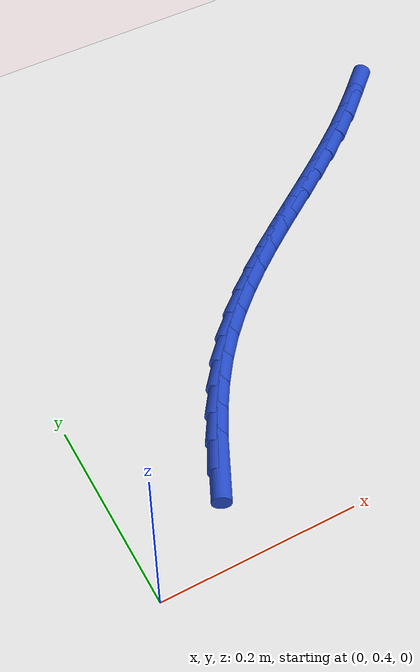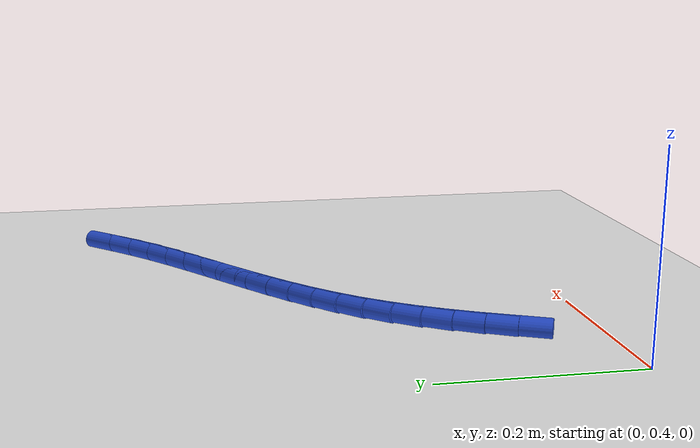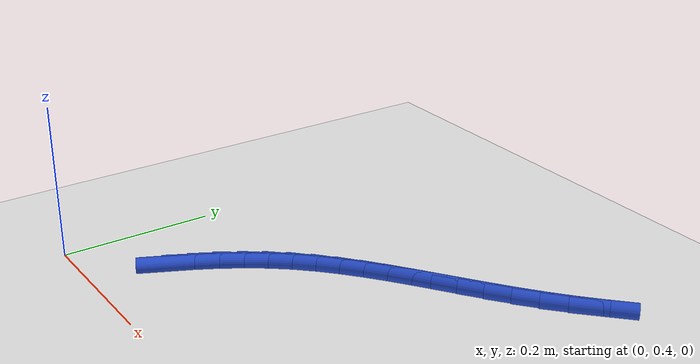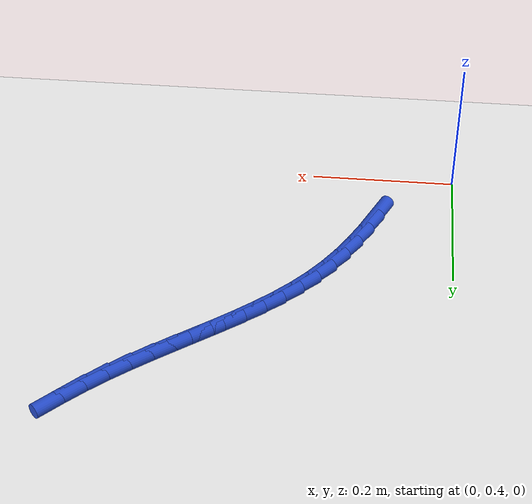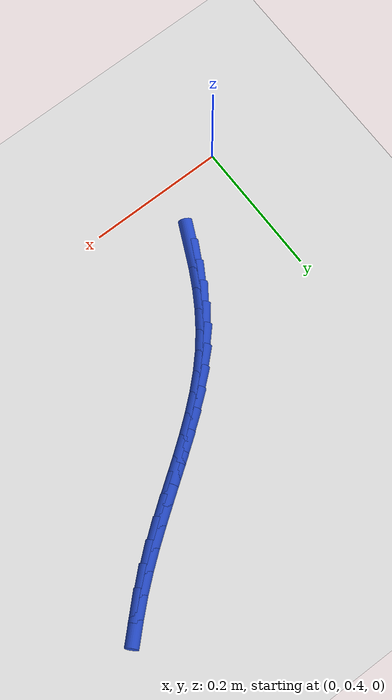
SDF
<sdf version="1.6">
 <world name="default">
  <model name="ground_plane">
   <static>1</static>
   <link name="link">
    <collision name="collision">
     <geometry><plane><normal>0 0 1</normal><size>100 100</size></plane></geometry>
     <surface><friction><ode><mu>100</mu><mu2>50</mu2></ode></friction></surface>
    </collision>
    <visual name="visual">
     <cast_shadows>0</cast_shadows>
     <geometry><plane><normal>0 0 1</normal><size>100 100</size></plane></geometry>
     <material>
      <script><uri>file://media/materials/scripts/gazebo.material</uri><name>Gazebo/WhiteGlow</name></script>
     </material>
    </visual>
   </link>
  </model>
  <model name="line">
   <link name="link_16">
    <pose>0.10963596149787026 0.49259504146608374 0.01 0 1.57 1.1235939953996381</pose>
    <collision name="collision">
     <geometry><cylinder><radius>0.01</radius><length>0.08</length></cylinder></geometry>
    </collision>
    <visual name="visual">
     <material>
      <script><name>Gazebo/Blue</name><uri>file://media/materials/scripts/gazebo.material</uri></script>
     </material>
     <geometry><cylinder><radius>0.01</radius><length>0.08</length></cylinder></geometry>
    </visual>
   </link>
   <link name="link_17">
    <pose>0.12323353961052447 0.5209464101278314 0.01 0 1.57 1.0735516022050022</pose>
    <collision name="collision">
     <geometry><cylinder><radius>0.01</radius><length>0.08</length></cylinder></geometry>
    </collision>
    <visual name="visual">
     <material>
      <script><name>Gazebo/Blue</name><uri>file://media/materials/scripts/gazebo.material</uri></script>
     </material>
     <geometry><cylinder><radius>0.01</radius><length>0.08</length></cylinder></geometry>
    </visual>
   </link>
   <link name="link_18">
    <pose>0.13807692696084287 0.5482958835029461 0.01 0 1.57 1.0170895564254745</pose>
    <collision name="collision">
     <geometry><cylinder><radius>0.01</radius><length>0.08</length></cylinder></geometry>
    </collision>
    <visual name="visual">
     <material>
      <script><name>Gazebo/Blue</name><uri>file://media/materials/scripts/gazebo.material</uri></script>
     </material>
     <geometry><cylinder><radius>0.01</radius><length>0.08</length></cylinder></geometry>
    </visual>
   </link>
   <link name="link_19">
    <pose>0.1542716628500016 0.5744917598729503 0.01 0 1.57 0.9539432039357943</pose>
    <collision name="collision">
     <geometry><cylinder><radius>0.01</radius><length>0.08</length></cylinder></geometry>
    </collision>
    <visual name="visual">
     <material>
      <script><name>Gazebo/Blue</name><uri>file://media/materials/scripts/gazebo.material</uri></script>
     </material>
     <geometry><cylinder><radius>0.01</radius><length>0.08</length></cylinder></geometry>
    </visual>
   </link>
   <link name="link_20">
    <pose>0.1719232865791765 0.5993823375193654 0.01 0 1.57 0.8840601311046977</pose>
    <collision name="collision">
     <geometry><cylinder><radius>0.01</radius><length>0.08</length></cylinder></geometry>
    </collision>
    <visual name="visual">
     <material>
      <script><name>Gazebo/Blue</name><uri>file://media/materials/scripts/gazebo.material</uri></script>
     </material>
     <geometry><cylinder><radius>0.01</radius><length>0.08</length></cylinder></geometry>
    </visual>
   </link>
   <link name="link_21">
    <pose>0.1911365075809445 0.6228169876965481 0.01 0 1.57 0.8129370297855333</pose>
    <collision name="collision">
     <geometry><cylinder><radius>0.01</radius><length>0.08</length></cylinder></geometry>
    </collision>
    <visual name="visual">
     <material>
      <script><name>Gazebo/Blue</name><uri>file://media/materials/scripts/gazebo.material</uri></script>
     </material>
     <geometry><cylinder><radius>0.01</radius><length>0.08</length></cylinder></geometry>
    </visual>
   </link>
   <link name="link_22">
    <pose>0.21191631395889213 0.6447740156576184 0.01 0 1.57 0.7515742842364286</pose>
    <collision name="collision">
     <geometry><cylinder><radius>0.01</radius><length>0.08</length></cylinder></geometry>
    </collision>
    <visual name="visual">
     <material>
      <script><name>Gazebo/Blue</name><uri>file://media/materials/scripts/gazebo.material</uri></script>
     </material>
     <geometry><cylinder><radius>0.01</radius><length>0.08</length></cylinder></geometry>
    </visual>
   </link>
   <link name="link_23">
    <pose>0.2340743916555512 0.6654816553404339 0.01 0 1.57 0.7017033571511775</pose>
    <collision name="collision">
     <geometry><cylinder><radius>0.01</radius><length>0.08</length></cylinder></geometry>
    </collision>
    <visual name="visual">
     <material>
      <script><name>Gazebo/Blue</name><uri>file://media/materials/scripts/gazebo.material</uri></script>
     </material>
     <geometry><cylinder><radius>0.01</radius><length>0.08</length></cylinder></geometry>
    </visual>
   </link>
   <link name="link_24">
    <pose>0.2574002691879749 0.6851967889720207 0.01 0 1.57 0.663414064282118</pose>
    <collision name="collision">
     <geometry><cylinder><radius>0.01</radius><length>0.08</length></cylinder></geometry>
    </collision>
    <visual name="visual">
     <material>
      <script><name>Gazebo/Blue</name><uri>file://media/materials/scripts/gazebo.material</uri></script>
     </material>
     <geometry><cylinder><radius>0.01</radius><length>0.08</length></cylinder></geometry>
    </visual>
   </link>
   <link name="link_25">
    <pose>0.2816834750732168 0.7041762987794064 0.01 0 1.57 0.6365156320590385</pose>
    <collision name="collision">
     <geometry><cylinder><radius>0.01</radius><length>0.08</length></cylinder></geometry>
    </collision>
    <visual name="visual">
     <material>
      <script><name>Gazebo/Blue</name><uri>file://media/materials/scripts/gazebo.material</uri></script>
     </material>
     <geometry><cylinder><radius>0.01</radius><length>0.08</length></cylinder></geometry>
    </visual>
   </link>
   <link name="link_26">
    <pose>0.30671353782832955 0.7226770669896165 0.01 0 1.57 0.6206937872995485</pose>
    <collision name="collision">
     <geometry><cylinder><radius>0.01</radius><length>0.08</length></cylinder></geometry>
    </collision>
    <visual name="visual">
     <material>
      <script><name>Gazebo/Blue</name><uri>file://media/materials/scripts/gazebo.material</uri></script>
     </material>
     <geometry><cylinder><radius>0.01</radius><length>0.08</length></cylinder></geometry>
    </visual>
   </link>
   <link name="link_27">
    <pose>0.33227998597036706 0.7409559758296789 0.01 0 1.57 0.6156153061417663</pose>
    <collision name="collision">
     <geometry><cylinder><radius>0.01</radius><length>0.08</length></cylinder></geometry>
    </collision>
    <visual name="visual">
     <material>
      <script><name>Gazebo/Blue</name><uri>file://media/materials/scripts/gazebo.material</uri></script>
     </material>
     <geometry><cylinder><radius>0.01</radius><length>0.08</length></cylinder></geometry>
    </visual>
   </link>
   <link name="link_28">
    <pose>0.35817234801638226 0.7592699075266195 0.01 0 1.57 0.6209832081552575</pose>
    <collision name="collision">
     <geometry><cylinder><radius>0.01</radius><length>0.08</length></cylinder></geometry>
    </collision>
    <visual name="visual">
     <material>
      <script><name>Gazebo/Blue</name><uri>file://media/materials/scripts/gazebo.material</uri></script>
     </material>
     <geometry><cylinder><radius>0.01</radius><length>0.08</length></cylinder></geometry>
    </visual>
   </link>
   <link name="link_29">
    <pose>0.3841801524834282 0.7778757443074652 0.01 0 1.57 0.6365507193358064</pose>
    <collision name="collision">
     <geometry><cylinder><radius>0.01</radius><length>0.08</length></cylinder></geometry>
    </collision>
    <visual name="visual">
     <material>
      <script><name>Gazebo/Blue</name><uri>file://media/materials/scripts/gazebo.material</uri></script>
     </material>
     <geometry><cylinder><radius>0.01</radius><length>0.08</length></cylinder></geometry>
    </visual>
   </link>
   <link name="link_30">
    <pose>0.41009292788855867 0.797030368399243 0.01 0 1.57 0.662101331183834</pose>
    <collision name="collision">
     <geometry><cylinder><radius>0.01</radius><length>0.08</length></cylinder></geometry>
    </collision>
    <visual name="visual">
     <material>
      <script><name>Gazebo/Blue</name><uri>file://media/materials/scripts/gazebo.material</uri></script>
     </material>
     <geometry><cylinder><radius>0.01</radius><length>0.08</length></cylinder></geometry>
    </visual>
   </link>
   <link name="link_31">
    <pose>0.43570020274882626 0.8169906620289791 0.01 0 1.57 0.6974002145431685</pose>
    <collision name="collision">
     <geometry><cylinder><radius>0.01</radius><length>0.08</length></cylinder></geometry>
    </collision>
    <visual name="visual">
     <material>
      <script><name>Gazebo/Blue</name><uri>file://media/materials/scripts/gazebo.material</uri></script>
     </material>
     <geometry><cylinder><radius>0.01</radius><length>0.08</length></cylinder></geometry>
    </visual>
   </link>
   <link name="link_32">
    <pose>0.4607915055812847 0.8380135074237003 0.01 0 1.57 0.7382220612444971</pose>
    <collision name="collision">
     <geometry><cylinder><radius>0.01</radius><length>0.08</length></cylinder></geometry>
    </collision>
    <visual name="visual">
     <material>
      <script><name>Gazebo/Blue</name><uri>file://media/materials/scripts/gazebo.material</uri></script>
     </material>
     <geometry><cylinder><radius>0.01</radius><length>0.08</length></cylinder></geometry>
    </visual>
   </link>
   <link name="link_33">
    <pose>0.48521746118042597 0.8602370857438127 0.01 0 1.57 0.7658696968263236</pose>
    <collision name="collision">
     <geometry><cylinder><radius>0.01</radius><length>0.08</length></cylinder></geometry>
    </collision>
    <visual name="visual">
     <material>
      <script><name>Gazebo/Blue</name><uri>file://media/materials/scripts/gazebo.material</uri></script>
     </material>
     <geometry><cylinder><radius>0.01</radius><length>0.08</length></cylinder></geometry>
    </visual>
   </link>
  </model>
 </world>
</sdf>
